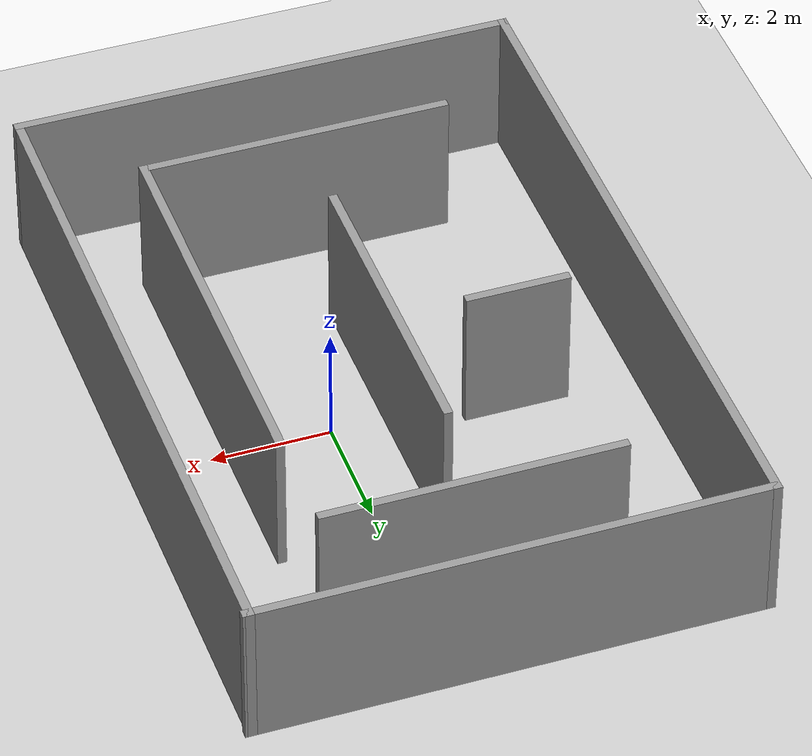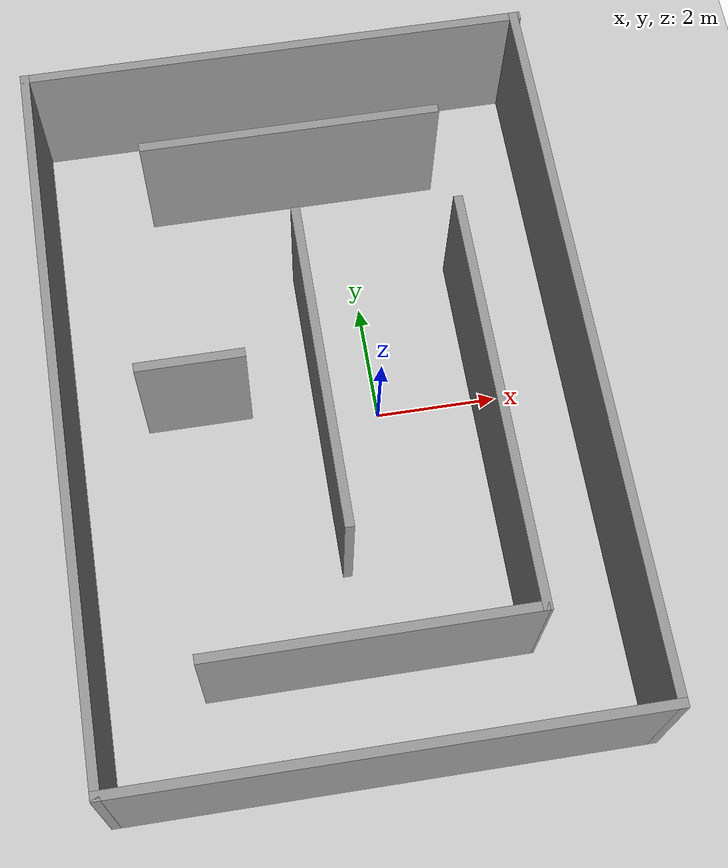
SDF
<sdf version="1.7">
 <world name="default">
  <light name="sun" type="directional">
   <pose>0 0 10 0 -0 0</pose>
   <diffuse>0.8 0.8 0.8 1</diffuse>
   <specular>0.2 0.2 0.2 1</specular>
   <attenuation>
    <range>1000</range>
    <constant>0.9</constant>
    <linear>0.01</linear>
    <quadratic>0.001</quadratic>
   </attenuation>
   <direction>-0.5 0.1 -0.9</direction>
   <spot><inner_angle>0</inner_angle><outer_angle>0</outer_angle><falloff>0</falloff></spot>
  </light>
  <model name="ground_plane">
   <static>1</static>
   <link name="link">
    <collision name="collision">
     <geometry><plane><normal>0 0 1</normal><size>100 100</size></plane></geometry>
     <surface>
      <contact><collide_bitmask>65535</collide_bitmask></contact>
      <friction><ode><mu>100</mu><mu2>50</mu2></ode></friction>
     </surface>
    </collision>
    <visual name="visual">
     <cast_shadows>0</cast_shadows>
     <geometry><plane><normal>0 0 1</normal><size>100 100</size></plane></geometry>
     <material>
      <script><uri>file://media/materials/scripts/gazebo.material</uri><name>Gazebo/Grey</name></script>
     </material>
    </visual>
   </link>
  </model>
  <gravity>0 0 -9.8</gravity>
  <magnetic_field>6e-06 2.3e-05 -4.2e-05</magnetic_field>
  <atmosphere type="adiabatic"/>
  <physics type="ode">
   <max_step_size>0.001</max_step_size>
   <real_time_factor>1</real_time_factor>
   <real_time_update_rate>1000</real_time_update_rate>
  </physics>
  <scene><ambient>0.4 0.4 0.4 1</ambient><background>0.7 0.7 0.7 1</background><shadows>1</shadows></scene>
  <spherical_coordinates>
   <surface_model>EARTH_WGS84</surface_model>
   <latitude_deg>0</latitude_deg>
   <longitude_deg>0</longitude_deg>
   <elevation>0</elevation>
   <heading_deg>0</heading_deg>
  </spherical_coordinates>
  <model name="matrix">
   <pose>-0.880412 -0.055829 0 0 -0 0</pose>
   <link name="Wall_25">
    <collision name="Wall_25_Collision">
     <geometry><box><size>12.1096 0.15 2.5</size></box></geometry>
     <pose>0 0 1.25 0 -0 0</pose>
    </collision>
    <visual name="Wall_25_Visual">
     <pose>0 0 1.25 0 -0 0</pose>
     <geometry><box><size>12.1096 0.15 2.5</size></box></geometry>
     <material>
      <script><uri>file://media/materials/scripts/gazebo.material</uri><name>Gazebo/Grey</name></script>
      <ambient>1 1 1 1</ambient>
     </material>
     <meta><layer>0</layer></meta>
    </visual>
    <pose>-4.19511 -0 0 0 -0 -1.5708</pose>
   </link>
   <link name="Wall_27">
    <collision name="Wall_27_Collision">
     <geometry><box><size>8.5 0.15 2.5</size></box></geometry>
     <pose>0 0 1.25 0 -0 0</pose>
    </collision>
    <visual name="Wall_27_Visual">
     <pose>0 0 1.25 0 -0 0</pose>
     <geometry><box><size>8.5 0.15 2.5</size></box></geometry>
     <material>
      <script><uri>file://media/materials/scripts/gazebo.material</uri><name>Gazebo/Grey</name></script>
      <ambient>1 1 1 1</ambient>
     </material>
     <meta><layer>0</layer></meta>
    </visual>
    <pose>0.020114 5.97966 0 0 -0 0</pose>
   </link>
   <link name="Wall_28">
    <collision name="Wall_28_Collision">
     <geometry><box><size>12.1096 0.15 2.5</size></box></geometry>
     <pose>0 0 1.25 0 -0 0</pose>
    </collision>
    <visual name="Wall_28_Visual">
     <pose>0 0 1.25 0 -0 0</pose>
     <geometry><box><size>12.1096 0.15 2.5</size></box></geometry>
     <material>
      <script><uri>file://media/materials/scripts/gazebo.material</uri><name>Gazebo/Grey</name></script>
      <ambient>1 1 1 1</ambient>
     </material>
     <meta><layer>0</layer></meta>
    </visual>
    <pose>4.15489 -0 0 0 -0 -1.5708</pose>
   </link>
   <link name="Wall_29">
    <collision name="Wall_29_Collision">
     <geometry><box><size>8.5 0.15 2.5</size></box></geometry>
     <pose>0 0 1.25 0 -0 0</pose>
    </collision>
    <visual name="Wall_29_Visual">
     <pose>0 0 1.25 0 -0 0</pose>
     <geometry><box><size>8.5 0.15 2.5</size></box></geometry>
     <material>
      <script><uri>file://media/materials/scripts/gazebo.material</uri><name>Gazebo/Grey</name></script>
      <ambient>1 1 1 1</ambient>
     </material>
     <meta><layer>0</layer></meta>
    </visual>
    <pose>-0.020113 -5.97966 0 0 -0 3.14159</pose>
   </link>
   <link name="Wall_31">
    <collision name="Wall_31_Collision">
     <geometry><box><size>5 0.15 2.5</size></box></geometry>
     <pose>0 0 1.25 0 -0 0</pose>
    </collision>
    <visual name="Wall_31_Visual">
     <pose>0 0 1.25 0 -0 0</pose>
     <geometry><box><size>5 0.15 2.5</size></box></geometry>
     <material>
      <script><uri>file://media/materials/scripts/gazebo.material</uri><name>Gazebo/Grey</name></script>
      <ambient>1 1 1 1</ambient>
     </material>
     <meta><layer>0</layer></meta>
    </visual>
    <pose>0.050404 4.35393 0 0 -0 0</pose>
   </link>
   <link name="Wall_34">
    <collision name="Wall_34_Collision">
     <geometry><box><size>5.20114 0.15 2.5</size></box></geometry>
     <pose>0 0 1.25 0 -0 0</pose>
    </collision>
    <visual name="Wall_34_Visual">
     <pose>0 0 1.25 0 -0 0</pose>
     <geometry><box><size>5.20114 0.15 2.5</size></box></geometry>
     <material>
      <script><uri>file://media/materials/scripts/gazebo.material</uri><name>Gazebo/Grey</name></script>
      <ambient>1 1 1 1</ambient>
     </material>
     <meta><layer>0</layer></meta>
    </visual>
    <pose>-0.009937 -4.28334 0 0 -0 0</pose>
   </link>
   <link name="Wall_38">
    <collision name="Wall_38_Collision">
     <geometry><box><size>7 0.15 2.5</size></box></geometry>
     <pose>0 0 1.25 0 -0 0</pose>
    </collision>
    <visual name="Wall_38_Visual">
     <pose>0 0 1.25 0 -0 0</pose>
     <geometry><box><size>7 0.15 2.5</size></box></geometry>
     <material>
      <script><uri>file://media/materials/scripts/gazebo.material</uri><name>Gazebo/Grey</name></script>
      <ambient>1 1 1 1</ambient>
     </material>
     <meta><layer>0</layer></meta>
    </visual>
    <pose>2.55586 -0.858337 0 0 -0 1.5708</pose>
   </link>
   <link name="Wall_41">
    <collision name="Wall_41_Collision">
     <geometry><box><size>5.5 0.15 2.5</size></box></geometry>
     <pose>0 0 1.25 0 -0 0</pose>
    </collision>
    <visual name="Wall_41_Visual">
     <pose>0 0 1.25 0 -0 0</pose>
     <geometry><box><size>5.5 0.15 2.5</size></box></geometry>
     <material>
      <script><uri>file://media/materials/scripts/gazebo.material</uri><name>Gazebo/Grey</name></script>
      <ambient>1 1 1 1</ambient>
     </material>
     <meta><layer>0</layer></meta>
    </visual>
    <pose>-0.081649 0.08984 0 0 -0 -1.5708</pose>
   </link>
   <link name="Wall_43">
    <collision name="Wall_43_Collision">
     <geometry><box><size>1.75 0.15 2.5</size></box></geometry>
     <pose>0 0 1.25 0 -0 0</pose>
    </collision>
    <visual name="Wall_43_Visual">
     <pose>0 0 1.25 0 -0 0</pose>
     <geometry><box><size>1.75 0.15 2.5</size></box></geometry>
     <material>
      <script><uri>file://media/materials/scripts/gazebo.material</uri><name>Gazebo/Grey</name></script>
      <ambient>1 1 1 1</ambient>
     </material>
     <meta><layer>0</layer></meta>
    </visual>
    <pose>-2.09755 0.411672 0 0 -0 0</pose>
   </link>
   <static>1</static>
  </model>
 </world>
</sdf>
